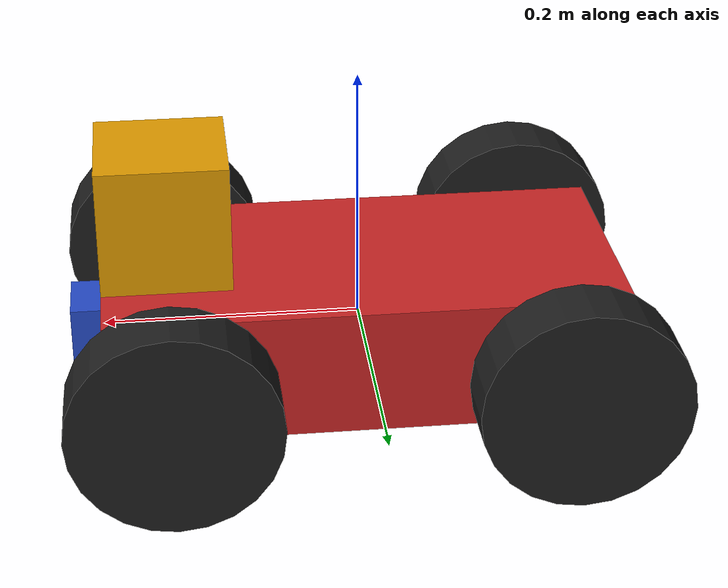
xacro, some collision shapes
<?xml version='1.0'?>

<robot name="my_robot" xmlns:xacro="http://www.ros.org/wiki/xacro">
<xacro:include filename="$(find map_my_world)/urdf/my_robot.gazebo" />

  <link name="robot_footprint"></link>

  <joint name="robot_footprint_joint" type="fixed">
    <origin xyz="0 0 0" rpy="0 0 0" />
    <parent link="robot_footprint"/>
    <child link="chassis" />
  </joint>

  <link name='chassis'>
    <pose>0 0 0.1 0 0 0</pose>

    <inertial>
      <mass value="15.0"/>
      <origin xyz="0.0 0 0" rpy=" 0 0 0"/>
      <inertia
          ixx="0.1" ixy="0" ixz="0"
          iyy="0.1" iyz="0"
          izz="0.1"
      />
    </inertial>

    <collision name='chassis_collision'>
      <origin xyz="0 0 0" rpy=" 0 0 0"/>
      <geometry>
        <box size=".4 .2 .1"/>
      </geometry>
    </collision>

    <visual name='chassis_visual'>
      <origin xyz="0 0 0" rpy=" 0 0 0"/>
      <geometry>
        <box size=".4 .2 .1"/>
      </geometry>
    </visual>

  </link>

  <link name='left_front_wheel'>
    <inertial>
      <mass value="5.0"/>
      <origin xyz="0.0 0 0" rpy=" 0 1.5707 1.5707"/>
      <inertia
          ixx="0.1" ixy="0" ixz="0"
          iyy="0.1" iyz="0"
          izz="0.1"
      />
    </inertial>

    <collision name='left_front_wheel_collision'>
      <origin xyz="0 0 0" rpy=" 0 1.5707 1.5707"/>
      <geometry>
        <cylinder length="0.05" radius="0.08"/>
      </geometry>
    </collision>

    <visual name='left_front_wheel_visual'>
      <origin xyz="0 0 0" rpy=" 0 1.5705 1.5707"/>
      <geometry>
        <cylinder length="0.05" radius="0.08"/>
      </geometry>
    </visual>
  </link>

  <joint type="continuous" name="left_front_wheel_hinge">
    <origin xyz="0.15 0.15 0" rpy="0 0 0"/>
    <child link="left_front_wheel"/>
    <parent link="chassis"/>
    <axis xyz="0 1 0" rpy="0 0 0"/>
    <limit effort="10000" velocity="1000"/>
    <dynamics damping="1.0" friction="1.0"/>
  </joint>

  <link name='left_back_wheel'>
    <inertial>
      <mass value="5.0"/>
      <origin xyz="0.0 0 0" rpy=" 0 1.5707 1.5707"/>
      <inertia
          ixx="0.1" ixy="0" ixz="0"
          iyy="0.1" iyz="0"
          izz="0.1"
      />
    </inertial>

    <collision name='left_back_wheel_collision'>
      <origin xyz="0 0 0" rpy=" 0 1.5707 1.5707"/>
      <geometry>
        <cylinder length="0.05" radius="0.08"/>
      </geometry>
    </collision>

    <visual name='left_back_wheel_visual'>
      <origin xyz="0 0 0" rpy=" 0 1.5705 1.5707"/>
      <geometry>
        <cylinder length="0.05" radius="0.08"/>
      </geometry>
    </visual>
  </link>

  <joint type="continuous" name="left_back_wheel_hinge">
    <origin xyz="-0.15 0.15 0" rpy="0 0 0"/>
    <child link="left_back_wheel"/>
    <parent link="chassis"/>
    <axis xyz="0 1 0" rpy="0 0 0"/>
    <limit effort="10000" velocity="1000"/>
    <dynamics damping="1.0" friction="1.0"/>
  </joint>

  <link name='right_front_wheel'>
    <inertial>
      <mass value="5.0"/>
      <origin xyz="0.0 0 0" rpy=" 0 1.5707 1.5707"/>
      <inertia
          ixx="0.1" ixy="0" ixz="0"
          iyy="0.1" iyz="0"
          izz="0.1"
      />
    </inertial>

    <collision name='right_front_wheel_collision'>
      <origin xyz="0 0 0" rpy=" 0 1.5707 1.5707"/>
      <geometry>
        <cylinder length="0.05" radius="0.08"/>
      </geometry>
    </collision>

    <visual name='right_front_wheel_visual'>
      <origin xyz="0 0 0" rpy=" 0 1.5705 1.5707"/>
      <geometry>
        <cylinder length="0.05" radius="0.08"/>
      </geometry>
    </visual>
  </link>

  <joint type="continuous" name="right_front_wheel_hinge">
    <origin xyz="0.15 -0.15 0" rpy="0 0 0"/>
    <child link="right_front_wheel"/>
    <parent link="chassis"/>
    <axis xyz="0 1 0" rpy="0 0 0"/>
    <limit effort="10000" velocity="1000"/>
    <dynamics damping="1.0" friction="1.0"/>
  </joint>

  <link name='right_back_wheel'>
    <inertial>
      <mass value="5.0"/>
      <origin xyz="0.0 0 0" rpy=" 0 1.5707 1.5707"/>
      <inertia
          ixx="0.1" ixy="0" ixz="0"
          iyy="0.1" iyz="0"
          izz="0.1"
      />
    </inertial>

    <collision name='right_back_wheel_collision'>
      <origin xyz="0 0 0" rpy=" 0 1.5707 1.5707"/>
      <geometry>
        <cylinder length="0.05" radius="0.08"/>
      </geometry>
    </collision>

    <visual name='right_back_wheel_visual'>
      <origin xyz="0 0 0" rpy=" 0 1.5705 1.5707"/>
      <geometry>
        <cylinder length="0.05" radius="0.08"/>
      </geometry>
    </visual>
  </link>

  <joint type="continuous" name="right_back_wheel_hinge">
    <origin xyz="-0.15 -0.15 0" rpy="0 0 0"/>
    <child link="right_back_wheel"/>
    <parent link="chassis"/>
    <axis xyz="0 1 0" rpy="0 0 0"/>
    <limit effort="10000" velocity="1000"/>
    <dynamics damping="1.0" friction="1.0"/>
  </joint>

  <link name="camera">
    <inertial>
      <mass value="0.1"/>
      <origin xyz="0 0 0" rpy=" 0 0 0"/>
      <inertia
          ixx="1e-6" ixy="0" ixz="0"
          iyy="1e-6" iyz="0"
          izz="1e-6"
      />
    </inertial>

    <collision name='camera_collision'>
      <origin xyz="0 0 0" rpy=" 0 0 0"/>
      <geometry>
        <box size="0.05 0.05 0.05"/>
      </geometry>
    </collision>

    <visual name='camera_visual'>
      <origin xyz="0 0 0" rpy=" 0 0 0"/>
      <geometry>
        <box size="0.05 0.05 0.05"/>
      </geometry>
    </visual>
  </link>

  <joint name="camera_joint" type="fixed">
    <origin xyz="0.2 0 0" rpy="0 0 0"/>
    <child link="camera"/>
    <parent link="chassis"/>
    <axis xyz="0 1 0" rpy="0 0 0"/>
  </joint>

  <joint name="camera_optical_joint" type="fixed">
    <origin xyz="0 0 0" rpy="-1.5707 0 -1.5707"/>
    <parent link="camera"/>
    <child link="camera_link_optical"/>
  </joint>

  <link name="camera_link_optical">
  </link>

  <link name="hokuyo">
    <inertial>
      <mass value="1e-5"/>
      <origin xyz="0 0 0" rpy=" 0 0 0"/>
      <inertia
          ixx="1e-6" ixy="0" ixz="0"
          iyy="1e-6" iyz="0"
          izz="1e-6"
      />
    </inertial>

    <collision name='hokuyo_collision'>
      <origin xyz="0 0 0" rpy=" 0 0 0"/>
      <geometry>
        <box size="0.1 0.1 0.1"/>
      </geometry>
    </collision>

    <visual name='hokuyo_visual'>
      <origin xyz="0 0 0" rpy=" 0 0 0"/>
      <geometry>
        <mesh filename="package://map_my_world/meshes/hokuyo.dae"/>
      </geometry>
    </visual>
  </link>

  <joint type="fixed" name="hokuyo_joint">
    <origin xyz="0.15 0 0.1" rpy="0 0 0"/>
    <child link="hokuyo"/>
    <parent link="chassis"/>
    <axis xyz="0 1 0" rpy="0 0 0"/>
  </joint>

  <gazebo reference="chassis">
    <material>Gazebo/Red</material>
  </gazebo>

  <gazebo reference="camera">
    <material>Gazebo/Blue</material>
  </gazebo>

  <gazebo reference="left_front_wheel">
    <material>Gazebo/Black</material>
  </gazebo>

  <gazebo reference="right_front_wheel">
    <material>Gazebo/Black</material>
  </gazebo>

  <gazebo reference="left_back_wheel">
    <material>Gazebo/Black</material>
  </gazebo>

  <gazebo reference="right_back_wheel">
    <material>Gazebo/Black</material>
  </gazebo>

</robot>
